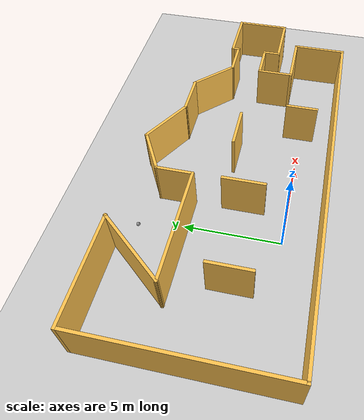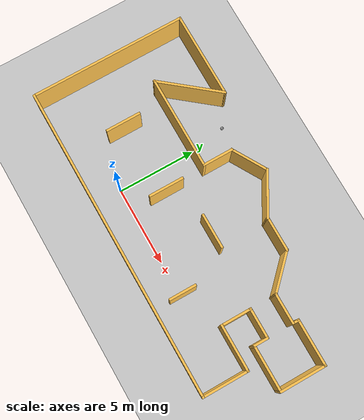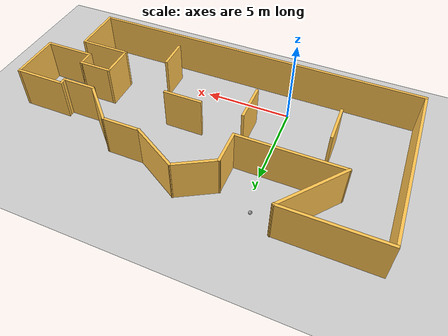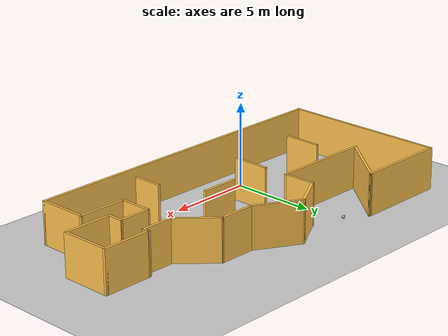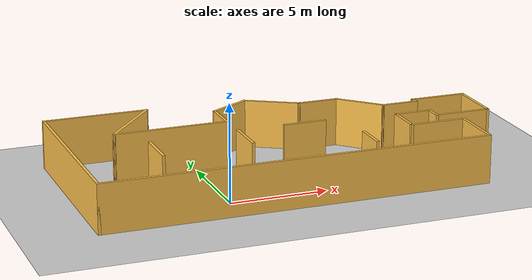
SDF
<sdf version="1.6">
 <world name="default">
  <plugin name="hello" filename="libhello.so"/>
  <light name="sun" type="directional">
   <pose>0 0 10 0 -0 0</pose>
   <diffuse>0.8 0.8 0.8 1</diffuse>
   <specular>0.2 0.2 0.2 1</specular>
   <attenuation>
    <range>1000</range>
    <constant>0.9</constant>
    <linear>0.01</linear>
    <quadratic>0.001</quadratic>
   </attenuation>
   <direction>-0.5 0.1 -0.9</direction>
  </light>
  <model name="ground_plane">
   <static>1</static>
   <link name="link">
    <collision name="collision">
     <geometry><plane><normal>0 0 1</normal><size>100 100</size></plane></geometry>
     <surface>
      <contact><collide_bitmask>65535</collide_bitmask></contact>
      <friction><ode><mu>100</mu><mu2>50</mu2></ode></friction>
     </surface>
    </collision>
    <visual name="visual">
     <cast_shadows>0</cast_shadows>
     <geometry><plane><normal>0 0 1</normal><size>100 100</size></plane></geometry>
     <material>
      <script><uri>file://media/materials/scripts/gazebo.material</uri><name>Gazebo/Grey</name></script>
     </material>
    </visual>
   </link>
  </model>
  <gravity>0 0 -9.8</gravity>
  <magnetic_field>6e-06 2.3e-05 -4.2e-05</magnetic_field>
  <atmosphere type="adiabatic"/>
  <physics name="default_physics" default="0" type="ode">
   <max_step_size>0.001</max_step_size>
   <real_time_factor>1</real_time_factor>
   <real_time_update_rate>1000</real_time_update_rate>
  </physics>
  <scene><ambient>0.4 0.4 0.4 1</ambient><background>0.7 0.7 0.7 1</background><shadows>1</shadows></scene>
  <spherical_coordinates>
   <surface_model>EARTH_WGS84</surface_model>
   <latitude_deg>0</latitude_deg>
   <longitude_deg>0</longitude_deg>
   <elevation>0</elevation>
   <heading_deg>0</heading_deg>
  </spherical_coordinates>
  <model name="gazeboprojBuilding">
   <pose>3.85223 3.16994 0 0 -0 0</pose>
   <link name="Wall_1">
    <collision name="Wall_1_Collision">
     <geometry><box><size>10 0.15 2.5</size></box></geometry>
     <pose>0 0 1.25 0 -0 0</pose>
    </collision>
    <visual name="Wall_1_Visual">
     <pose>0 0 1.25 0 -0 0</pose>
     <geometry><box><size>10 0.15 2.5</size></box></geometry>
     <material>
      <script><uri>file://media/materials/scripts/gazebo.material</uri><name>Gazebo/Grey</name></script>
      <ambient>1 0.764706 0.305882 1</ambient>
     </material>
     <meta><layer>0</layer></meta>
    </visual>
    <pose>-10.85 -0.015243 0 0 0 -1.5708</pose>
   </link>
   <link name="Wall_10">
    <collision name="Wall_10_Collision">
     <geometry><box><size>3 0.15 2.5</size></box></geometry>
     <pose>0 0 1.25 0 -0 0</pose>
    </collision>
    <visual name="Wall_10_Visual">
     <pose>0 0 1.25 0 -0 0</pose>
     <geometry><box><size>3 0.15 2.5</size></box></geometry>
     <material>
      <script><uri>file://media/materials/scripts/gazebo.material</uri><name>Gazebo/Grey</name></script>
      <ambient>1 0.764706 0.305882 1</ambient>
     </material>
     <meta><layer>0</layer></meta>
    </visual>
    <pose>10.85 0.334757 0 0 -0 1.5708</pose>
   </link>
   <link name="Wall_11">
    <collision name="Wall_11_Collision">
     <geometry><box><size>3 0.15 2.5</size></box></geometry>
     <pose>0 0 1.25 0 -0 0</pose>
    </collision>
    <visual name="Wall_11_Visual">
     <pose>0 0 1.25 0 -0 0</pose>
     <geometry><box><size>3 0.15 2.5</size></box></geometry>
     <material>
      <script><uri>file://media/materials/scripts/gazebo.material</uri><name>Gazebo/Grey</name></script>
      <ambient>1 0.764706 0.305882 1</ambient>
     </material>
     <meta><layer>0</layer></meta>
    </visual>
    <pose>9.425 1.75976 0 0 -0 3.14159</pose>
   </link>
   <link name="Wall_12">
    <collision name="Wall_12_Collision">
     <geometry><box><size>0.5 0.15 2.5</size></box></geometry>
     <pose>0 0 1.25 0 -0 0</pose>
    </collision>
    <visual name="Wall_12_Visual">
     <pose>0 0 1.25 0 -0 0</pose>
     <geometry><box><size>0.5 0.15 2.5</size></box></geometry>
     <material>
      <script><uri>file://media/materials/scripts/gazebo.material</uri><name>Gazebo/Grey</name></script>
      <ambient>1 0.764706 0.305882 1</ambient>
     </material>
     <meta><layer>0</layer></meta>
    </visual>
    <pose>8 1.58476 0 0 0 -1.5708</pose>
   </link>
   <link name="Wall_13">
    <collision name="Wall_13_Collision">
     <geometry><box><size>2 0.15 2.5</size></box></geometry>
     <pose>0 0 1.25 0 -0 0</pose>
    </collision>
    <visual name="Wall_13_Visual">
     <pose>0 0 1.25 0 -0 0</pose>
     <geometry><box><size>2 0.15 2.5</size></box></geometry>
     <material>
      <script><uri>file://media/materials/scripts/gazebo.material</uri><name>Gazebo/Grey</name></script>
      <ambient>1 0.764706 0.305882 1</ambient>
     </material>
     <meta><layer>0</layer></meta>
    </visual>
    <pose>7.075 1.40976 0 0 -0 3.14159</pose>
   </link>
   <link name="Wall_14">
    <collision name="Wall_14_Collision">
     <geometry><box><size>2.75 0.15 2.5</size></box></geometry>
     <pose>0 0 1.25 0 -0 0</pose>
    </collision>
    <visual name="Wall_14_Visual">
     <pose>0 0 1.25 0 -0 0</pose>
     <geometry><box><size>2.75 0.15 2.5</size></box></geometry>
     <material>
      <script><uri>file://media/materials/scripts/gazebo.material</uri><name>Gazebo/Grey</name></script>
      <ambient>1 0.764706 0.305882 1</ambient>
     </material>
     <meta><layer>0</layer></meta>
    </visual>
    <pose>5.23076 2.329 0 0 -0 2.35619</pose>
   </link>
   <link name="Wall_15">
    <collision name="Wall_15_Collision">
     <geometry><box><size>2.25 0.15 2.5</size></box></geometry>
     <pose>0 0 1.25 0 -0 0</pose>
    </collision>
    <visual name="Wall_15_Visual">
     <pose>0 0 1.25 0 -0 0</pose>
     <geometry><box><size>2.25 0.15 2.5</size></box></geometry>
     <material>
      <script><uri>file://media/materials/scripts/gazebo.material</uri><name>Gazebo/Grey</name></script>
      <ambient>1 0.764706 0.305882 1</ambient>
     </material>
     <meta><layer>0</layer></meta>
    </visual>
    <pose>3.26152 3.24823 0 0 -0 3.14159</pose>
   </link>
   <link name="Wall_16">
    <collision name="Wall_16_Collision">
     <geometry><box><size>3 0.15 2.5</size></box></geometry>
     <pose>0 0 1.25 0 -0 0</pose>
    </collision>
    <visual name="Wall_16_Visual">
     <pose>0 0 1.25 0 -0 0</pose>
     <geometry><box><size>3 0.15 2.5</size></box></geometry>
     <material>
      <script><uri>file://media/materials/scripts/gazebo.material</uri><name>Gazebo/Grey</name></script>
      <ambient>1 0.764706 0.305882 1</ambient>
     </material>
     <meta><layer>0</layer></meta>
    </visual>
    <pose>0.977437 3.96073 0 0 -0 2.61799</pose>
   </link>
   <link name="Wall_17">
    <collision name="Wall_17_Collision">
     <geometry><box><size>2.5 0.15 2.5</size></box></geometry>
     <pose>0 0 1.25 0 -0 0</pose>
    </collision>
    <visual name="Wall_17_Visual">
     <pose>0 0 1.25 0 -0 0</pose>
     <geometry><box><size>2.5 0.15 2.5</size></box></geometry>
     <material>
      <script><uri>file://media/materials/scripts/gazebo.material</uri><name>Gazebo/Grey</name></script>
      <ambient>1 0.764706 0.305882 1</ambient>
     </material>
     <meta><layer>0</layer></meta>
    </visual>
    <pose>-1.27423 4.08573 0 0 0 -2.61799</pose>
   </link>
   <link name="Wall_18">
    <collision name="Wall_18_Collision">
     <geometry><box><size>2 0.15 2.5</size></box></geometry>
     <pose>0 0 1.25 0 -0 0</pose>
    </collision>
    <visual name="Wall_18_Visual">
     <pose>0 0 1.25 0 -0 0</pose>
     <geometry><box><size>2 0.15 2.5</size></box></geometry>
     <material>
      <script><uri>file://media/materials/scripts/gazebo.material</uri><name>Gazebo/Grey</name></script>
      <ambient>1 0.764706 0.305882 1</ambient>
     </material>
     <meta><layer>0</layer></meta>
    </visual>
    <pose>-2.29181 2.57323 0 0 0 -1.5708</pose>
   </link>
   <link name="Wall_19">
    <collision name="Wall_19_Collision">
     <geometry><box><size>6 0.15 2.5</size></box></geometry>
     <pose>0 0 1.25 0 -0 0</pose>
    </collision>
    <visual name="Wall_19_Visual">
     <pose>0 0 1.25 0 -0 0</pose>
     <geometry><box><size>6 0.15 2.5</size></box></geometry>
     <material>
      <script><uri>file://media/materials/scripts/gazebo.material</uri><name>Gazebo/Grey</name></script>
      <ambient>1 0.764706 0.305882 1</ambient>
     </material>
     <meta><layer>0</layer></meta>
    </visual>
    <pose>-5.21681 1.64823 0 0 -0 3.14159</pose>
   </link>
   <link name="Wall_20">
    <collision name="Wall_20_Collision">
     <geometry><box><size>4.34722 0.15 2.5</size></box></geometry>
     <pose>0 0 1.25 0 -0 0</pose>
    </collision>
    <visual name="Wall_20_Visual">
     <pose>0 0 1.25 0 -0 0</pose>
     <geometry><box><size>4.34722 0.15 2.5</size></box></geometry>
     <material>
      <script><uri>file://media/materials/scripts/gazebo.material</uri><name>Gazebo/Grey</name></script>
      <ambient>1 0.764706 0.305882 1</ambient>
     </material>
     <meta><layer>0</layer></meta>
    </visual>
    <pose>-6.8209 3.279 0 0 -0 0.889992</pose>
   </link>
   <link name="Wall_21">
    <collision name="Wall_21_Collision">
     <geometry><box><size>5.5 0.15 2.5</size></box></geometry>
     <pose>0 0 1.25 0 -0 0</pose>
    </collision>
    <visual name="Wall_21_Visual">
     <pose>0 0 1.25 0 -0 0</pose>
     <geometry><box><size>5.5 0.15 2.5</size></box></geometry>
     <material>
      <script><uri>file://media/materials/scripts/gazebo.material</uri><name>Gazebo/Grey</name></script>
      <ambient>1 0.764706 0.305882 1</ambient>
     </material>
     <meta><layer>0</layer></meta>
    </visual>
    <pose>-8.175 4.90976 0 0 -0 3.14159</pose>
   </link>
   <link name="Wall_23">
    <collision name="Wall_23_Collision">
     <geometry><box><size>2.25 0.15 2.5</size></box></geometry>
     <pose>0 0 1.25 0 -0 0</pose>
    </collision>
    <visual name="Wall_23_Visual">
     <pose>0 0 1.25 0 -0 0</pose>
     <geometry><box><size>2.25 0.15 2.5</size></box></geometry>
     <material>
      <script><uri>file://media/materials/scripts/gazebo.material</uri><name>Gazebo/Grey</name></script>
      <ambient>1 0.764706 0.305882 1</ambient>
     </material>
     <meta><layer>0</layer></meta>
    </visual>
    <pose>-2.23675 -0.896376 0 0 0 -1.5708</pose>
   </link>
   <link name="Wall_25">
    <collision name="Wall_25_Collision">
     <geometry><box><size>2.25 0.15 2.5</size></box></geometry>
     <pose>0 0 1.25 0 -0 0</pose>
    </collision>
    <visual name="Wall_25_Visual">
     <pose>0 0 1.25 0 -0 0</pose>
     <geometry><box><size>2.25 0.15 2.5</size></box></geometry>
     <material>
      <script><uri>file://media/materials/scripts/gazebo.material</uri><name>Gazebo/Grey</name></script>
      <ambient>1 0.764706 0.305882 1</ambient>
     </material>
     <meta><layer>0</layer></meta>
    </visual>
    <pose>1.28932 0.126414 0 0 -0 0</pose>
   </link>
   <link name="Wall_27">
    <collision name="Wall_27_Collision">
     <geometry><box><size>1.75 0.15 2.5</size></box></geometry>
     <pose>0 0 1.25 0 -0 0</pose>
    </collision>
    <visual name="Wall_27_Visual">
     <pose>0 0 1.25 0 -0 0</pose>
     <geometry><box><size>1.75 0.15 2.5</size></box></geometry>
     <material>
      <script><uri>file://media/materials/scripts/gazebo.material</uri><name>Gazebo/Grey</name></script>
      <ambient>1 0.764706 0.305882 1</ambient>
     </material>
     <meta><layer>0</layer></meta>
    </visual>
    <pose>3.47726 -3.06803 0 0 0 -1.5708</pose>
   </link>
   <link name="Wall_29">
    <collision name="Wall_29_Collision">
     <geometry><box><size>2.25 0.15 2.5</size></box></geometry>
     <pose>0 0 1.25 0 -0 0</pose>
    </collision>
    <visual name="Wall_29_Visual">
     <pose>0 0 1.25 0 -0 0</pose>
     <geometry><box><size>2.25 0.15 2.5</size></box></geometry>
     <material>
      <script><uri>file://media/materials/scripts/gazebo.material</uri><name>Gazebo/Grey</name></script>
      <ambient>1 0.764706 0.305882 1</ambient>
     </material>
     <meta><layer>0</layer></meta>
    </visual>
    <pose>-6.86238 -1.16847 0 0 0 -1.5708</pose>
   </link>
   <link name="Wall_3">
    <collision name="Wall_3_Collision">
     <geometry><box><size>20 0.15 2.5</size></box></geometry>
     <pose>0 0 1.25 0 -0 0</pose>
    </collision>
    <visual name="Wall_3_Visual">
     <pose>0 0 1.25 0 -0 0</pose>
     <geometry><box><size>20 0.15 2.5</size></box></geometry>
     <material>
      <script><uri>file://media/materials/scripts/gazebo.material</uri><name>Gazebo/Grey</name></script>
      <ambient>1 0.764706 0.305882 1</ambient>
     </material>
     <meta><layer>0</layer></meta>
    </visual>
    <pose>-0.924999 -4.94024 0 0 -0 0</pose>
   </link>
   <link name="Wall_4">
    <collision name="Wall_4_Collision">
     <geometry><box><size>3 0.15 2.5</size></box></geometry>
     <pose>0 0 1.25 0 -0 0</pose>
    </collision>
    <visual name="Wall_4_Visual">
     <pose>0 0 1.25 0 -0 0</pose>
     <geometry><box><size>3 0.15 2.5</size></box></geometry>
     <material>
      <script><uri>file://media/materials/scripts/gazebo.material</uri><name>Gazebo/Grey</name></script>
      <ambient>1 0.764706 0.305882 1</ambient>
     </material>
     <meta><layer>0</layer></meta>
    </visual>
    <pose>9 -3.51524 0 0 -0 1.5708</pose>
   </link>
   <link name="Wall_5">
    <collision name="Wall_5_Collision">
     <geometry><box><size>3 0.15 2.5</size></box></geometry>
     <pose>0 0 1.25 0 -0 0</pose>
    </collision>
    <visual name="Wall_5_Visual">
     <pose>0 0 1.25 0 -0 0</pose>
     <geometry><box><size>3 0.15 2.5</size></box></geometry>
     <material>
      <script><uri>file://media/materials/scripts/gazebo.material</uri><name>Gazebo/Grey</name></script>
      <ambient>1 0.764706 0.305882 1</ambient>
     </material>
     <meta><layer>0</layer></meta>
    </visual>
    <pose>7.575 -2.09024 0 0 -0 3.14159</pose>
   </link>
   <link name="Wall_6">
    <collision name="Wall_6_Collision">
     <geometry><box><size>2 0.15 2.5</size></box></geometry>
     <pose>0 0 1.25 0 -0 0</pose>
    </collision>
    <visual name="Wall_6_Visual">
     <pose>0 0 1.25 0 -0 0</pose>
     <geometry><box><size>2 0.15 2.5</size></box></geometry>
     <material>
      <script><uri>file://media/materials/scripts/gazebo.material</uri><name>Gazebo/Grey</name></script>
      <ambient>1 0.764706 0.305882 1</ambient>
     </material>
     <meta><layer>0</layer></meta>
    </visual>
    <pose>6.15 -1.16524 0 0 -0 1.5708</pose>
   </link>
   <link name="Wall_7">
    <collision name="Wall_7_Collision">
     <geometry><box><size>2 0.15 2.5</size></box></geometry>
     <pose>0 0 1.25 0 -0 0</pose>
    </collision>
    <visual name="Wall_7_Visual">
     <pose>0 0 1.25 0 -0 0</pose>
     <geometry><box><size>2 0.15 2.5</size></box></geometry>
     <material>
      <script><uri>file://media/materials/scripts/gazebo.material</uri><name>Gazebo/Grey</name></script>
      <ambient>1 0.764706 0.305882 1</ambient>
     </material>
     <meta><layer>0</layer></meta>
    </visual>
    <pose>7.075 -0.240243 0 0 -0 0</pose>
   </link>
   <link name="Wall_8">
    <collision name="Wall_8_Collision">
     <geometry><box><size>1 0.15 2.5</size></box></geometry>
     <pose>0 0 1.25 0 -0 0</pose>
    </collision>
    <visual name="Wall_8_Visual">
     <pose>0 0 1.25 0 -0 0</pose>
     <geometry><box><size>1 0.15 2.5</size></box></geometry>
     <material>
      <script><uri>file://media/materials/scripts/gazebo.material</uri><name>Gazebo/Grey</name></script>
      <ambient>1 0.764706 0.305882 1</ambient>
     </material>
     <meta><layer>0</layer></meta>
    </visual>
    <pose>8 -0.665243 0 0 0 -1.5708</pose>
   </link>
   <link name="Wall_9">
    <collision name="Wall_9_Collision">
     <geometry><box><size>3 0.15 2.5</size></box></geometry>
     <pose>0 0 1.25 0 -0 0</pose>
    </collision>
    <visual name="Wall_9_Visual">
     <pose>0 0 1.25 0 -0 0</pose>
     <geometry><box><size>3 0.15 2.5</size></box></geometry>
     <material>
      <script><uri>file://media/materials/scripts/gazebo.material</uri><name>Gazebo/Grey</name></script>
      <ambient>1 0.764706 0.305882 1</ambient>
     </material>
     <meta><layer>0</layer></meta>
    </visual>
    <pose>9.425 -1.09024 0 0 -0 0</pose>
   </link>
   <static>1</static>
  </model>
  <model name="my_ball">
   <link name="link_0">
    <inertial>
     <mass>1</mass>
     <inertia><ixx>0.1</ixx><ixy>0</ixy><ixz>0</ixz><iyy>0.1</iyy><iyz>0</iyz><izz>0.1</izz></inertia>
    </inertial>
    <visual name="visual">
     <geometry><sphere><radius>0.1</radius></sphere></geometry>
     <material>
      <lighting>1</lighting>
      <script><uri>file://media/materials/scripts/gazebo.material</uri><name>Gazebo/Grey</name></script>
      <shader type="pixel"><normal_map>__default__</normal_map></shader>
      <ambient>1 1 1 1</ambient>
      <diffuse>1 1 1 1</diffuse>
      <specular>1 1 1 1</specular>
      <emissive>0 0 0 1</emissive>
     </material>
    </visual>
    <collision name="collision">
     <geometry><sphere><radius>0.1</radius></sphere></geometry>
     <surface>
      <friction>
       <ode><mu>1</mu><mu2>1</mu2><fdir1>0 0 0</fdir1><slip1>0</slip1><slip2>0</slip2></ode>
       <torsional>
        <coefficient>1</coefficient>
        <patch_radius>0</patch_radius>
        <surface_radius>0</surface_radius>
        <use_patch_radius>1</use_patch_radius>
        <ode><slip>0</slip></ode>
       </torsional>
      </friction>
      <bounce><restitution_coefficient>0</restitution_coefficient><threshold>1e+06</threshold></bounce>
      <contact>
       <collide_without_contact>0</collide_without_contact>
       <collide_without_contact_bitmask>1</collide_without_contact_bitmask>
       <collide_bitmask>1</collide_bitmask>
       <ode>
        <soft_cfm>0</soft_cfm>
        <soft_erp>0.2</soft_erp>
        <kp>1e+13</kp>
        <kd>1</kd>
        <max_vel>0.01</max_vel>
        <min_depth>0</min_depth>
       </ode>
       <bullet>
        <split_impulse>1</split_impulse>
        <split_impulse_penetration_threshold>-0.01</split_impulse_penetration_threshold>
        <soft_cfm>0</soft_cfm>
        <soft_erp>0.2</soft_erp>
        <kp>1e+13</kp>
        <kd>1</kd>
       </bullet>
      </contact>
     </surface>
    </collision>
   </link>
   <static>0</static>
   <pose>-0.373317 7.29247 0.1 0 -0 0</pose>
  </model>
 </world>
</sdf>
